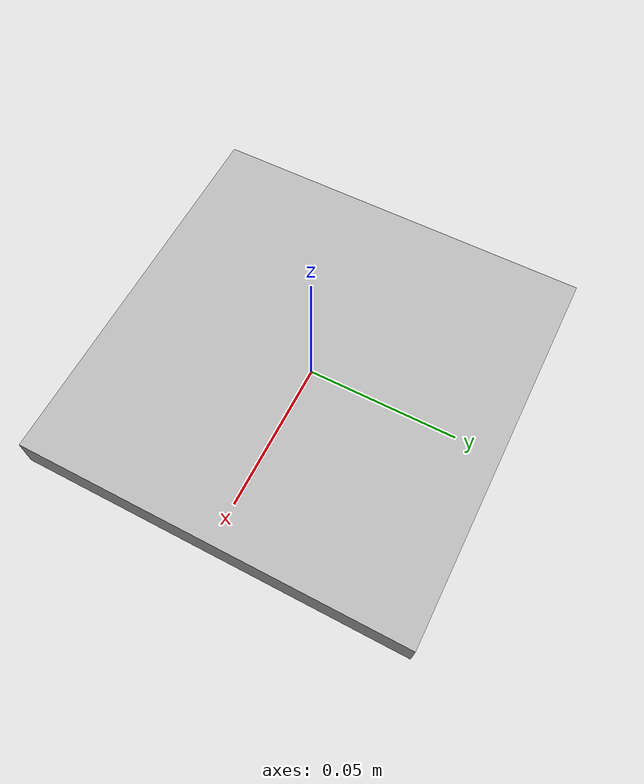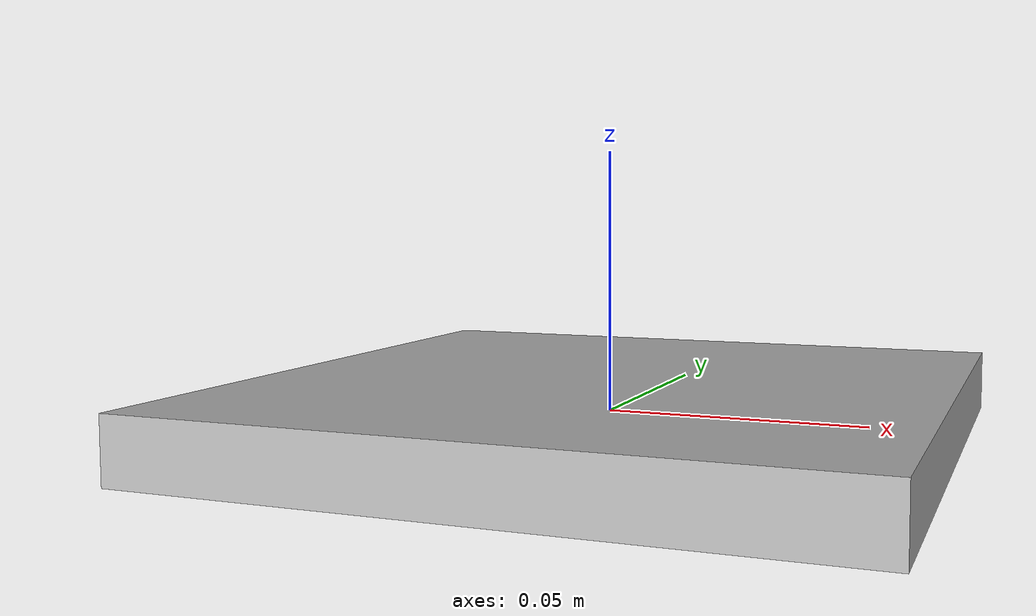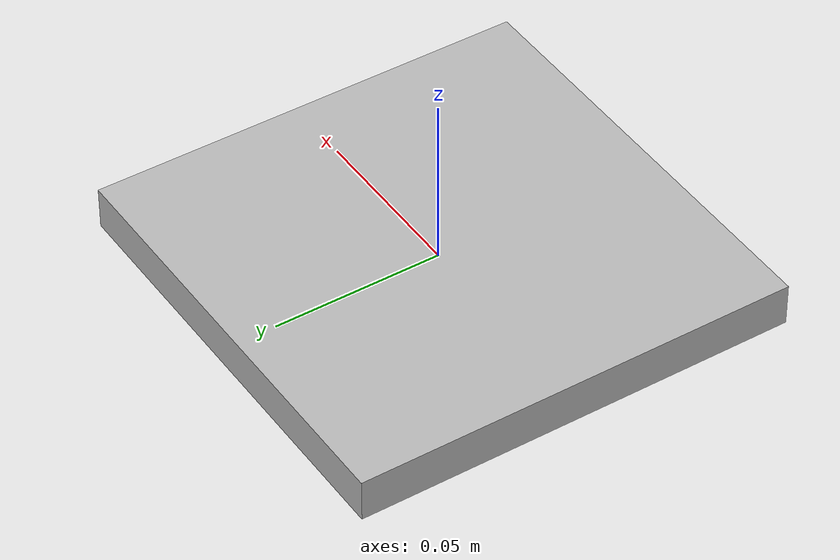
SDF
<?xml version="1.0" ?>
<sdf version="1.5">
  <model name="cubo_suporte">
    <static>false</static>
    <link name="link">
      <inertial>
        <pose>0 0 0 0 0 0</pose>
        <mass>0.1</mass>
        <inertia>
          <ixx>0.01</ixx>
          <ixy>0</ixy>
          <ixz>0</ixz>
          <iyy>0.01</iyy>
          <iyz>0</iyz>
          <izz>0.01</izz>
        </inertia>
      </inertial>

      <collision name="collision">
        <pose>0 0 0 0 0 0</pose>
          <geometry>
            <box>
              <size>0.13 0.13 0.0125</size>
            </box>
          </geometry>
          <contact>
            <ode>
              <min_depth>0.001</min_depth>
              <max_vel>0</max_vel>
            </ode>
          </contact>
      </collision>

      <visual name="visual">
        <pose>0 0 0 0 0 0</pose>
          <geometry>
            <box>
              <size>0.13 0.13 0.0125</size>
            </box>
          </geometry>
      </visual>
    </link>
  </model>
</sdf>
